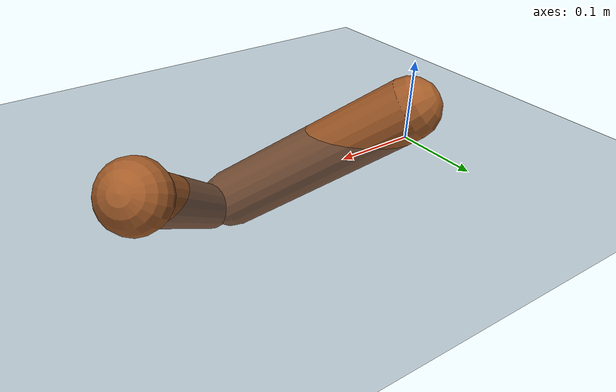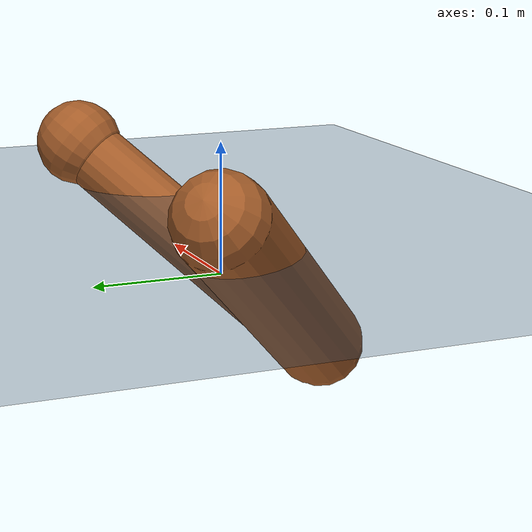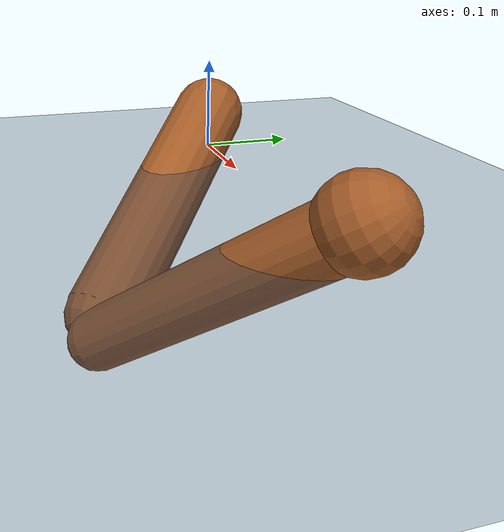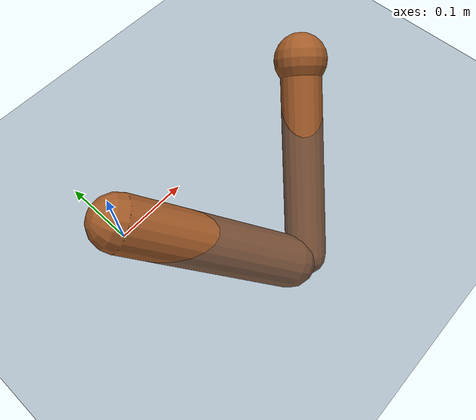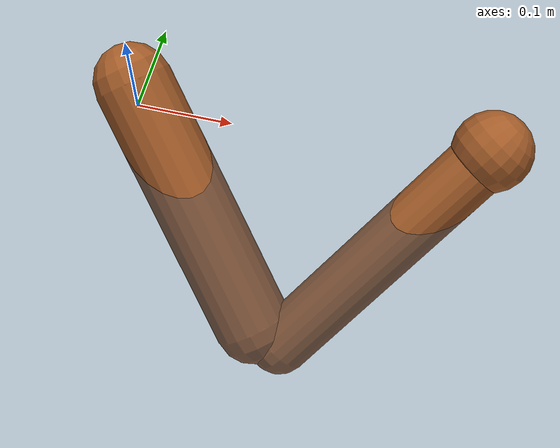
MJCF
<!-- Isolated right arm — shoulder root fixed at ground level.
     Extracted from humanoid.xml. Shoulder1/shoulder2/elbow joints are active.
-->
<mujoco model="arm_right">
  <option timestep="0.005"/>

  <visual>
    <map force="0.1" zfar="30"/>
    <rgba haze="0.15 0.25 0.35 1"/>
    <global offwidth="2560" offheight="1440" elevation="-20" azimuth="120"/>
  </visual>

  <asset>
    <texture type="skybox" builtin="gradient" rgb1=".3 .5 .7" rgb2="0 0 0" width="32" height="512"/>
    <texture name="body" type="cube" builtin="flat" mark="cross" width="128" height="128" rgb1="0.8 0.6 0.4" rgb2="0.8 0.6 0.4" markrgb="1 1 1"/>
    <material name="body" texture="body" texuniform="true" rgba="0.8 0.6 .4 1"/>
    <texture name="grid" type="2d" builtin="checker" width="512" height="512" rgb1=".1 .2 .3" rgb2=".2 .3 .4"/>
    <material name="grid" texture="grid" texrepeat="1 1" texuniform="true" reflectance=".2"/>
  </asset>

  <default>
    <motor ctrlrange="-1 1" ctrllimited="true"/>
    <default class="body">
      <geom type="capsule" condim="1" friction=".7" solimp=".9 .99 .003" solref=".015 1" material="body" group="1"/>
      <default class="arm_upper">
        <geom size=".04"/>
      </default>
      <default class="arm_lower">
        <geom size=".031"/>
      </default>
      <default class="hand">
        <geom type="sphere" size=".04"/>
      </default>
      <joint type="hinge" damping=".2" stiffness="1" armature=".01" limited="true" solimplimit="0 .99 .01"/>
      <default class="shoulder">
        <joint range="-85 60"/>
      </default>
      <default class="elbow">
        <joint range="-100 50" stiffness="0"/>
      </default>
    </default>
  </default>

  <worldbody>
    <geom name="floor" size="0 0 .05" type="plane" material="grid" condim="3"/>
    <light name="top" pos="0 0 2"/>

    <!--
      Shoulder root pinned at ground level (z=0.04 ≈ arm-upper radius).
      No freejoint — this body is fixed to the world.
    -->
    <body name="upper_arm_right" pos="0 0 0.04" childclass="body">
      <joint name="shoulder1_right" axis="2 1 1"  class="shoulder"/>
      <joint name="shoulder2_right" axis="0 -1 1" class="shoulder"/>
      <geom name="upper_arm_right" fromto="0 0 0 .16 -.16 -.16" class="arm_upper"/>
      <body name="lower_arm_right" pos=".18 -.18 -.18">
        <joint name="elbow_right" axis="0 -1 1" class="elbow"/>
        <geom name="lower_arm_right" fromto=".01 .01 .01 .17 .17 .17" class="arm_lower"/>
        <body name="hand_right" pos=".18 .18 .18">
          <geom name="hand_right" zaxis="1 1 1" class="hand"/>
        </body>
      </body>
    </body>
  </worldbody>

  <actuator>
    <motor name="shoulder1_right" gear="20" joint="shoulder1_right"/>
    <motor name="shoulder2_right" gear="20" joint="shoulder2_right"/>
    <motor name="elbow_right"     gear="40" joint="elbow_right"/>
  </actuator>

  <keyframe>
    <!-- arm pointing upward from shoulder-on-ground -->
    <key name="arm_up" qpos="0.5 -0.5 0"/>
  </keyframe>
</mujoco>
